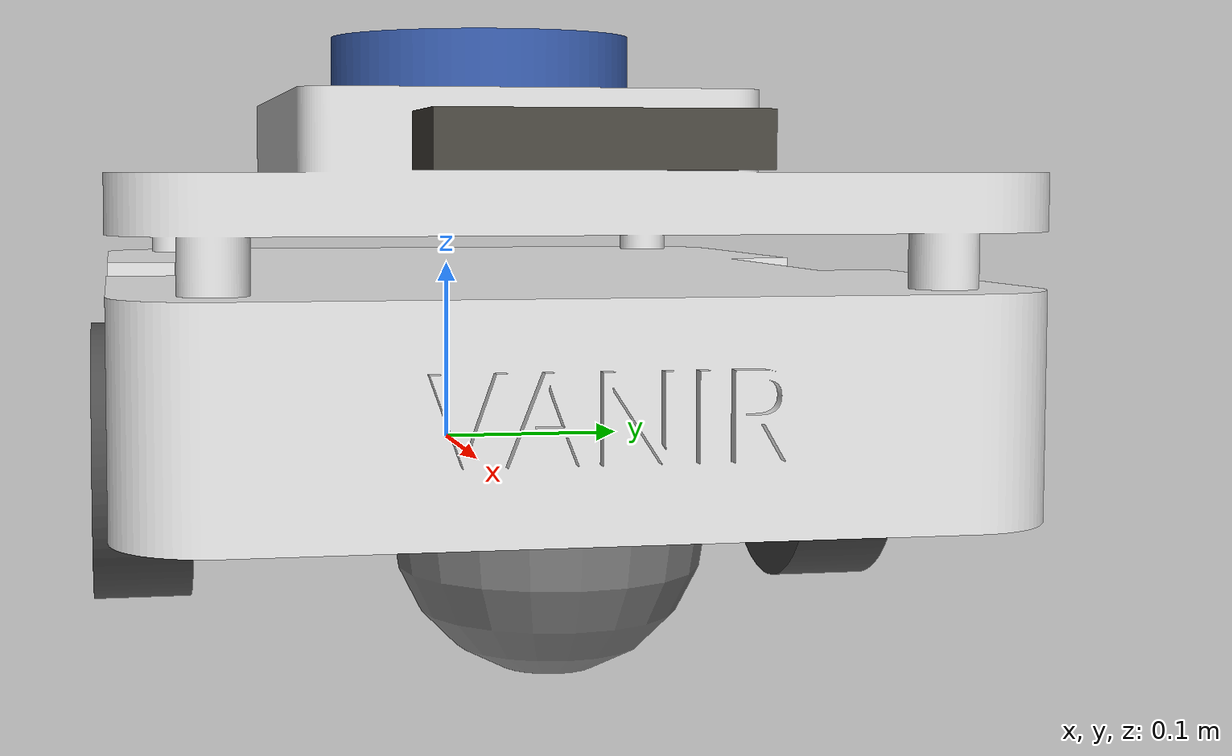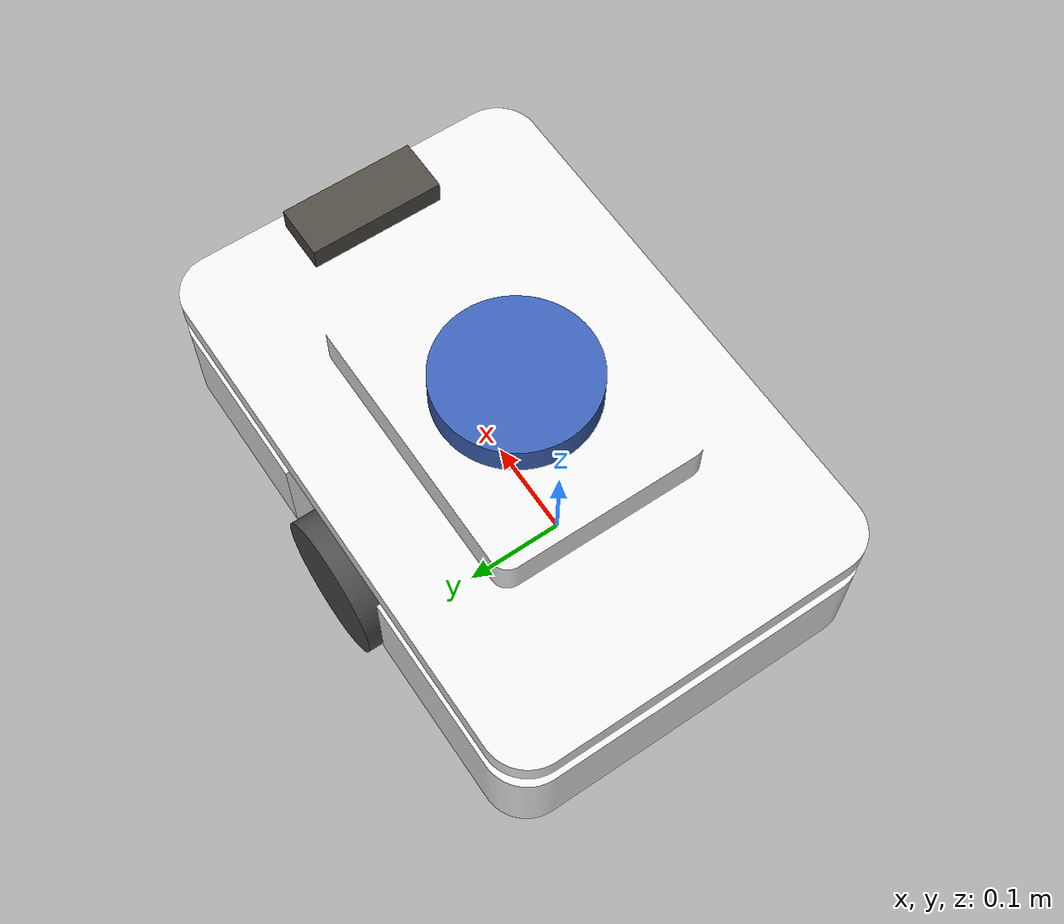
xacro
<?xml version="1.0"?>
<robot xmlns:xacro="http://www.ros.org/wiki/xacro" name="vanir">

  <link name="base_link">
    <inertial>
      <origin xyz="0.0691514 0.00840293 0.0780423" rpy="0 0 0"/>
      <mass value="86.4984"/>
      <inertia ixx="1.23316" ixy="-2.70276e-05" ixz="-0.00435928" iyy="2.75808" iyz="1.88929e-06" izz="3.50466"/>
    </inertial>

    <!-- Part base_link -->
    <visual>
      <origin xyz="0.0684338 0.00840189 0.000920176" rpy="0 -0 1.5708"/>
      <geometry>
        <mesh filename="file://$(find vanir_description)/meshes/base_link.stl"/>
      </geometry>
      <material name="base_link_material">
        <color rgba="0.917647 0.917647 0.917647 1.0"/>
      </material>
    </visual>
    <collision>
      <origin xyz="0.0684338 0.00840189 0.000920176" rpy="0 -0 1.5708"/>
      <geometry>
        <mesh filename="file://$(find vanir_description)/meshes/base_link.stl"/>
      </geometry>
    </collision>
  </link>

  <!-- Right Wheel -->
  <link name="dof_wheel_r">
    <inertial>
      <origin xyz="-1.05949e-17 -8.8737e-19 -0.025" rpy="0 0 0"/>
      <mass value="0.908215"/>
      <inertia ixx="0.00138266" ixy="0" ixz="5.88417e-35" iyy="0.00138266" iyz="0" izz="0.0023869"/>
    </inertial>
    <visual>
      <origin xyz="-1.38778e-17 -4.44523e-18 0.1625" rpy="-1.5708 -1.5708 0"/>
      <geometry>
        <mesh filename="file://$(find vanir_description)/meshes/dof_wheel_r.stl"/>
      </geometry>
      <material name="dof_wheel_r_material">
        <color rgba="0.301961 0.301961 0.301961 1.0"/>
      </material>
    </visual>
    <collision>
      <origin xyz="-1.38778e-17 -4.44523e-18 0.1625" rpy="-1.5708 -1.5708 0"/>
      <geometry>
        <mesh filename="file://$(find vanir_description)/meshes/dof_wheel_r.stl"/>
      </geometry>
    </collision>
  </link>
  <joint name="wheel_l" type="continuous">
    <origin xyz="0.0684338 -0.2 -0.0" rpy="1.5708 0 0"/>
    <parent link="base_link"/>
    <child link="dof_wheel_r"/>
    <axis xyz="0 0 -1"/>
    <limit effort="10" velocity="10"/>
  </joint>

  <!-- Left Wheel -->
  <link name="dof_wheel_l">
    <inertial>
      <origin xyz="-3.28288e-18 -1.9388e-18 -0.025" rpy="0 0 0"/>
      <mass value="0.908215"/>
      <inertia ixx="0.00138266" ixy="0" ixz="-5.88417e-35" iyy="0.00138266" iyz="0" izz="0.0023869"/>
    </inertial>
    <visual>
      <origin xyz="1.38778e-17 4.44523e-18 0.1625" rpy="1.5708 1.5708 0"/>
      <geometry>
        <mesh filename="file://$(find vanir_description)/meshes/dof_wheel_l.stl"/>
      </geometry>
      <material name="dof_wheel_l_material">
        <color rgba="0.301961 0.301961 0.301961 1.0"/>
      </material>
    </visual>
    <collision>
      <origin xyz="1.38778e-17 4.44523e-18 0.1625" rpy="1.5708 1.5708 0"/>
      <geometry>
        <mesh filename="file://$(find vanir_description)/meshes/dof_wheel_l.stl"/>
      </geometry>
    </collision>
  </link>
  <joint name="wheel_r" type="continuous">
    <origin xyz="0.0684338 0.22 -0.0" rpy="-1.5708 0 0"/>
    <parent link="base_link"/>
    <child link="dof_wheel_l"/>
    <axis xyz="0 0 1"/>
    <limit effort="10" velocity="10"/>
  </joint>

  <!-- Camera -->
  <link name="vanir/base_link/depth_camera1">
    <visual>
      <origin xyz="0.0760324 0.00840189 0.000920176" rpy="0 0 1.5708"/>
      <geometry>
        <mesh filename="file://$(find vanir_description)/meshes/camera.stl"/>
      </geometry>
      <material name="camera_material">
        <color rgba="0.301961 0.290196 0.262745 1.0"/>
      </material>
    </visual>
    <collision>
      <origin xyz="0.0760324 0.00840189 0.000920176" rpy="0 0 1.5708"/>
      <geometry>
        <mesh filename="file://$(find vanir_description)/meshes/camera.stl"/>
      </geometry>
    </collision>
  </link>
  <joint name="camera_joint" type="fixed">
    <parent link="base_link"/>
    <child link="vanir/base_link/depth_camera1"/>
    <origin xyz="0.008 0.0 0.001" rpy="0 0 0"/>
  </joint>

  <!-- Lidar -->
  <link name="vanir/base_link/gpu_lidar">
    <visual>
      <origin xyz="0.0684338 0.00840189 0.000920176" rpy="0 0 1.5708"/>
      <geometry>
        <mesh filename="file://$(find vanir_description)/meshes/lidar.stl"/>
      </geometry>
      <material name="lidar_material">
        <color rgba="0.231373 0.380392 0.705882 1.0"/>
      </material>
    </visual>
    <collision>
      <origin xyz="0.0684338 0.00840189 0.000920176" rpy="0 0 1.5708"/>
      <geometry>
        <mesh filename="file://$(find vanir_description)/meshes/lidar.stl"/>
      </geometry>
    </collision>
  </link>
  <joint name="lidar_joint" type="fixed">
    <parent link="base_link"/>
    <child link="vanir/base_link/gpu_lidar"/>
    <origin xyz="-0.008 0.0 0.000920176" rpy="0 0 0"/>
  </joint>

<!-- Front Caster Sphere -->
<link name="front_caster">
  <inertial>
    <origin xyz="0 0 0" rpy="0 0 0"/>
    <mass value="0.1"/>
    <inertia ixx="1e-5" ixy="0" ixz="0" iyy="1e-5" iyz="0" izz="1e-5"/>
  </inertial>
  <visual>
    <origin xyz="0 0 0" rpy="0 0 0"/>
    <geometry>
      <sphere radius="0.07"/>
    </geometry>
    <material name="gray">
      <color rgba="0.5 0.5 0.5 1.0"/>
    </material>
  </visual>
  <collision>
    <origin xyz="0 0 0" rpy="0 0 0"/>
    <geometry>
      <sphere radius="0.07"/>
    </geometry>
  </collision>
</link>

<joint name="front_caster_joint" type="fixed">
  <parent link="base_link"/>
  <child link="front_caster"/>
  <origin xyz="0.28 0 0" rpy="0 0 0"/>
</joint>

<gazebo reference="front_caster">
  <mu1>0.0</mu1>
  <mu2>0.0</mu2>
  <material>Gazebo/Gray</material>
</gazebo>

<!-- Rear Caster Sphere -->
<link name="rear_caster">
  <inertial>
    <origin xyz="0 0 0" rpy="0 0 0"/>
    <mass value="0.1"/>
    <inertia ixx="1e-5" ixy="0" ixz="0" iyy="1e-5" iyz="0" izz="1e-5"/>
  </inertial>
  <visual>
    <origin xyz="0 0 0" rpy="0 0 0"/>
    <geometry>
      <sphere radius="0.07"/>
    </geometry>
    <material name="gray">
      <color rgba="0.5 0.5 0.5 1.0"/>
    </material>
  </visual>
  <collision>
    <origin xyz="0 0 0" rpy="0 0 0"/>
    <geometry>
      <sphere radius="0.07"/>
    </geometry>
  </collision>
</link>

<joint name="rear_caster_joint" type="fixed">
  <parent link="base_link"/>
  <child link="rear_caster"/>
  <origin xyz="-0.16 0 0" rpy="0 0 0"/>
</joint>

<gazebo reference="rear_caster">
  <mu1>0.0</mu1>
  <mu2>0.0</mu2>
  <material>Gazebo/Gray</material>
</gazebo>

</robot>
